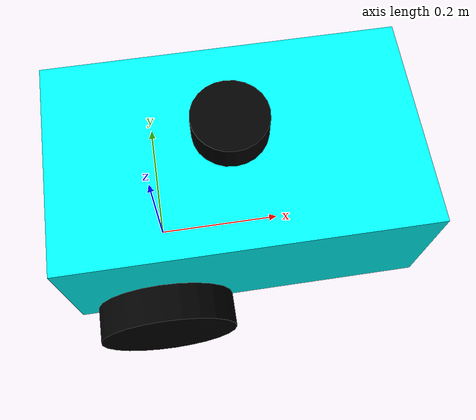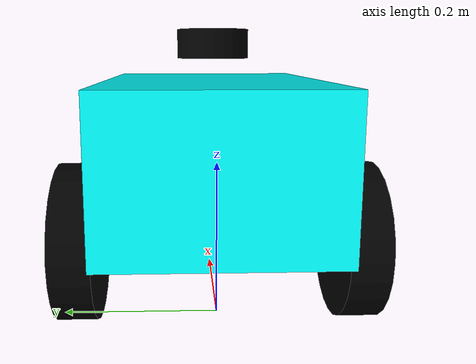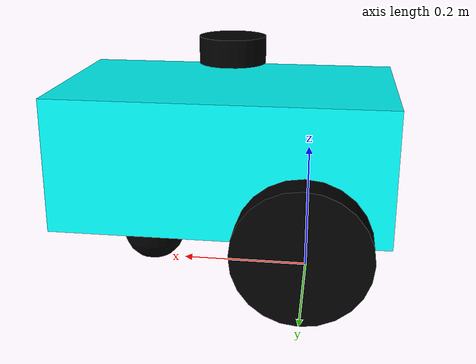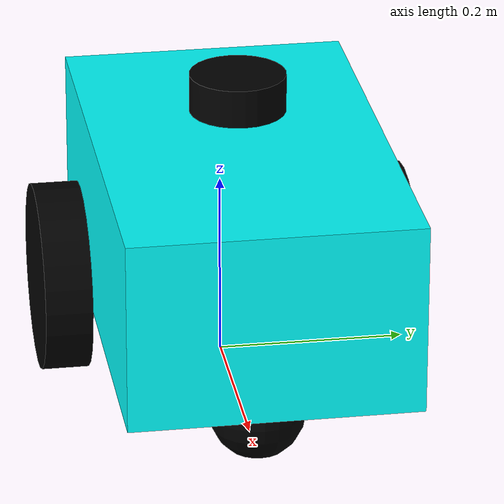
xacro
<?xml version="1.0"?>
<robot xmlns:xacro="http://www.ros.org/wiki/xacro" name="my_robot">

    <xacro:include filename="properties.xacro" />

    <xacro:include filename="my_robot.xacro" />

    <xacro:include filename="properties_gazebo.xacro" />

    <xacro:include filename="camera.xacro" />

    <xacro:include filename="lidar.xacro" />
</robot>

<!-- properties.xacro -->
<robot xmlns:xacro="http://www.ros.org/wiki/xacro">

    <xacro:property name="base_length" value="0.5" />
    <xacro:property name="base_width" value="0.3" />
    <xacro:property name="base_height" value="0.2" />
    <xacro:property name="wheel_radius" value="0.1" />
    <xacro:property name="wheel_length" value="0.05" />
    <xacro:property name="caster_wheel_radius" value="0.05" />

    <material name="cyan">
        <color rgba="0 1 1 1" />
    </material>
    <material name="black">
        <color rgba="0 0 0 1" />
    </material>

    <xacro:macro name="box_inertia" params="m l w h xyz rpy">
        <inertial>
            <origin xyz="${xyz}" rpy="${rpy}" />
            <mass value="${m}" />
            <inertia ixx="${(m/12) * (h*h + l*l)}" ixy="0" ixz="0" iyy="${(m/12) * (w*w + l*l)}" iyz="0" izz="${(m/12) * (w*w + h*h)}" />
        </inertial>
    </xacro:macro>

    <xacro:macro name="cylinder_inertia" params="m r h xyz rpy">
        <inertial>
            <origin xyz="${xyz}" rpy="${rpy}" />
            <mass value="${m}" />
            <inertia ixx="${(m/12) * (3*r*r + h*h)}" ixy="0" ixz="0" iyy="${(m/12) * (3*r*r + h*h)}" iyz="0" izz="${(m/2) * (r*r)}" />
        </inertial>
    </xacro:macro>

    <xacro:macro name="sphere_inertia" params="m r xyz rpy">
        <inertial>
            <origin xyz="${xyz}" rpy="${rpy}" />
            <mass value="${m}" />
            <inertia ixx="${(2/5) * m * r * r}" ixy="0" ixz="0" iyy="${(2/5) * m * r * r}" iyz="0" izz="${(2/5) * m * r * r}" />
        </inertial>
    </xacro:macro>

</robot>

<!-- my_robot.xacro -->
<robot xmlns:xacro="http://www.ros.org/wiki/xacro">

    <link name="base_footprint"/>

    <joint name="base_footprint_joint" type="fixed">
        <parent link="base_footprint"/>
        <child link="base_link"/>
        <origin xyz="0 0 ${wheel_radius}" rpy="0 0 0"/>
    </joint>

    <link name="base_link">
        <visual>
            <geometry>
                <box size="${base_length} ${base_width} ${base_height}" />
            </geometry>
            <origin xyz="${base_length/4} 0 ${base_height/2}" rpy="0 0 0" />
            <material name="cyan" />
        </visual>
        <collision>
            <geometry>
                <box size="${base_length} ${base_width} ${base_height}" />
            </geometry>
            <origin xyz="${base_length/4} 0 ${base_height/2}" rpy="0 0 0" />
        </collision>
        <xacro:box_inertia m="5.0" l="${base_length}" w="${base_width}" h="${base_height}"
                           xyz="${base_length/4} 0 ${base_height/2}" rpy="0 0 0" />
    </link>

    <xacro:macro name="wheel_link" params="prefix y_reflect">
        <link name="${prefix}_wheel_link">
            <visual>
                <geometry>
                    <cylinder radius="${wheel_radius}" length="${wheel_length}" />
                </geometry>
                <origin xyz="0 0 0" rpy="${pi/2} 0 0" />
                <material name="black" />
            </visual>
            <collision>
                <geometry>
                    <cylinder radius="${wheel_radius}" length="${wheel_length}" />
                </geometry>
                <origin xyz="0 0 0" rpy="${pi/2} 0 0" />
            </collision>
            <xacro:cylinder_inertia m="1.0" r="${wheel_radius}" h="${wheel_length}"
                                    xyz="0 0 0" rpy="${pi/2} 0 0" />
        </link>

        <joint name="${prefix}_wheel_joint" type="continuous">
            <parent link="base_link" />
            <child link="${prefix}_wheel_link" />
            <origin xyz="0 ${y_reflect * (base_width/2 + wheel_length/2)} 0" rpy="0 0 0" />
            <axis xyz="0 1 0" />
        </joint>
    </xacro:macro>

    <xacro:wheel_link prefix="left" y_reflect="1" />
    <xacro:wheel_link prefix="right" y_reflect="-1" />

    <link name="caster_wheel_link">
        <visual>
            <geometry>
                <sphere radius="${caster_wheel_radius}" />
            </geometry>
            <origin xyz="0 0 0" rpy="0 0 0" />
            <material name="black" />
        </visual>
        <collision>
            <geometry>
                <sphere radius="${caster_wheel_radius}" />
            </geometry>
            <origin xyz="0 0 0" rpy="0 0 0" />
        </collision>
        <xacro:sphere_inertia m="0.5" r="${caster_wheel_radius}" xyz="0 0 0" rpy="0 0 0" />
    </link>

    <joint name="caster_wheel_joint" type="fixed">
        <parent link="base_link" />
        <child link="caster_wheel_link" />
        <origin xyz="${base_length/2} 0 ${caster_wheel_radius - wheel_radius}" rpy="0 0 0" />
    </joint>

    <gazebo reference="base_link">
        <material>Gazebo/Cyan</material>
    </gazebo>
    <gazebo reference="left_wheel_link">
        <material>Gazebo/Black</material>
    </gazebo>
    <gazebo reference="right_wheel_link">
        <material>Gazebo/Black</material>
    </gazebo>
    <gazebo reference="caster_wheel_link">
        <material>Gazebo/Black</material>
    </gazebo>

</robot>

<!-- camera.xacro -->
<robot xmlns:xacro="http://www.ros.org/wiki/xacro">

    <xacro:property name="camera_width" value="0.1" />
    <xacro:property name="camera_length" value="0.05" /> <xacro:property name="camera_height" value="0.05" />

    <link name="camera_link">
        <visual>
            <geometry>
                <box size="${camera_length} ${camera_width} ${camera_height}" />
            </geometry>
            <origin xyz="0 0 0" rpy="0 0 0" />
            <material name="white">
                <color rgba="1 1 1 1"/>
            </material>
        </visual>

        <collision>
            <geometry>
                <box size="${camera_length} ${camera_width} ${camera_height}" />
            </geometry>
            <origin xyz="0 0 0" rpy="0 0 0" />
        </collision>

        <xacro:box_inertia m="0.1" l="${camera_length}" w="${camera_width}" h="${camera_height}" xyz="0 0 0" rpy="0 0 0" />
    </link>

    <joint name="base_camera_joint" type="fixed">
        <parent link="base_link" />
        <child link="camera_link" />
        <origin xyz="0.35 0 0.05" rpy="0 0 0" />
    </joint>

    <gazebo reference="camera_link">
        <material>Gazebo/White</material>

        <sensor name="camera_sensor" type="camera">
            <pose>0 0 0 0 0 0</pose>
            <visualize>true</visualize> <update_rate>10.0</update_rate>
            <plugin name="camera_controller" filename="libgazebo_ros_camera.so">
                <frame_name>camera_link</frame_name>
            </plugin>
        </sensor>
    </gazebo>

</robot>

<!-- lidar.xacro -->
<robot xmlns:xacro="http://www.ros.org/wiki/xacro">

    <xacro:macro name="inertial_cylinder" params="mass length radius *origin">
        <inertial>
            <xacro:insert_block name="origin"/>
            <mass value="${mass}"/>
            <inertia ixx="${(1/12) * mass * (3*radius*radius + length*length)}" ixy="0.0" ixz="0.0"
                     iyy="${(1/12) * mass * (3*radius*radius + length*length)}" iyz="0.0"
                     izz="${(1/2) * mass * (radius*radius)}" />
        </inertial>
    </xacro:macro>

    <joint name="laser_joint" type="fixed">
        <parent link="base_link"/>
        <child link="laser_frame"/>
        <origin xyz="0.12 0 0.25" rpy="0 0 0"/>
    </joint>

    <link name="laser_frame">
        <visual>
            <geometry>
                <cylinder radius="0.05" length="0.04"/>
            </geometry>
            <material name="black">
                <color rgba="0 0 0 1"/>
            </material>
        </visual>
        <collision>
            <geometry>
                <cylinder radius="0.01" length="0.01"/>
            </geometry>
        </collision>
        <xacro:inertial_cylinder mass="0.1" length="0.04" radius="0.05">
            <origin xyz="0 0 0" rpy="0 0 0"/>
        </xacro:inertial_cylinder>
    </link>

    <gazebo reference="laser_frame">
        <material>Gazebo/Black</material>
        <sensor name="laser" type="ray">
            <pose> 0 0 0 0 0 0 </pose>
            <visualize>true</visualize>
            <update_rate>10</update_rate>
            <ray>
                <scan>
                    <horizontal>
                        <samples>360</samples>
                        <min_angle>-3.14</min_angle>
                        <max_angle>3.14</max_angle>
                    </horizontal>
                </scan>
                <range>
                    <min>0.3</min>
                    <max>12</max>
                </range>
            </ray>
            <plugin name="laser_controller" filename="libgazebo_ros_ray_sensor.so">
                <ros>
                    <argument>~/out:=scan</argument>
                </ros>
                <output_type>sensor_msgs/LaserScan</output_type>
                <frame_name>laser_frame</frame_name>
            </plugin>
        </sensor>
    </gazebo>

</robot>
